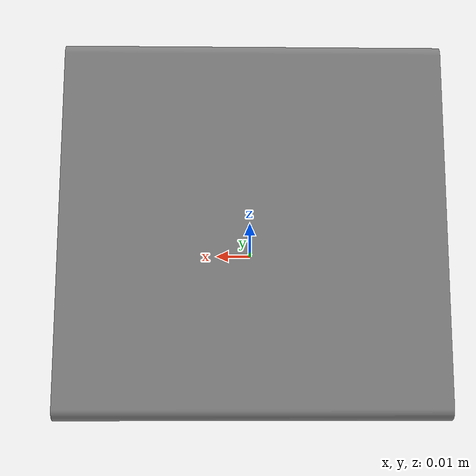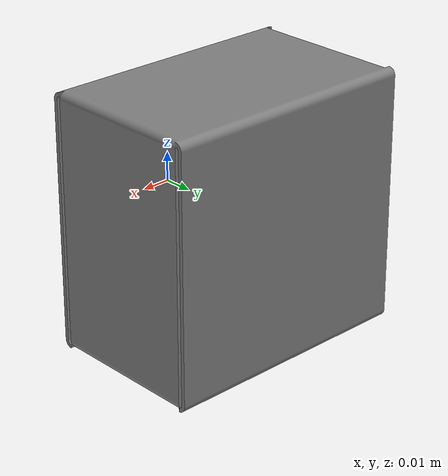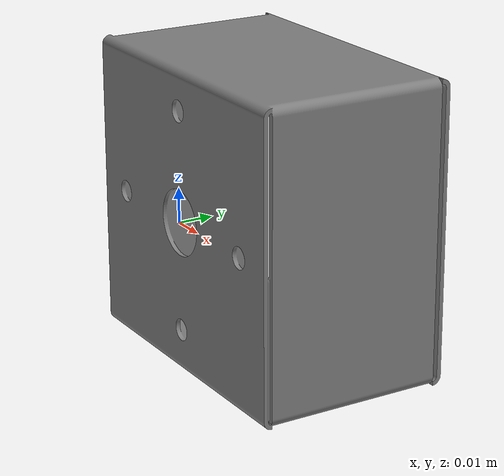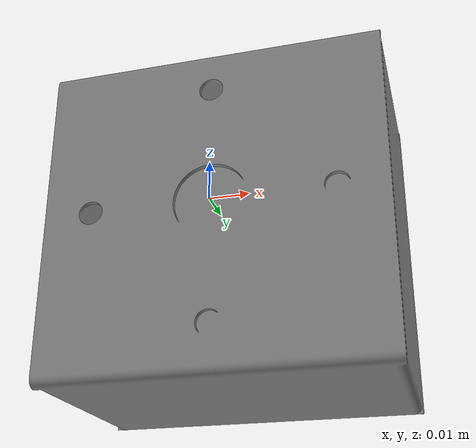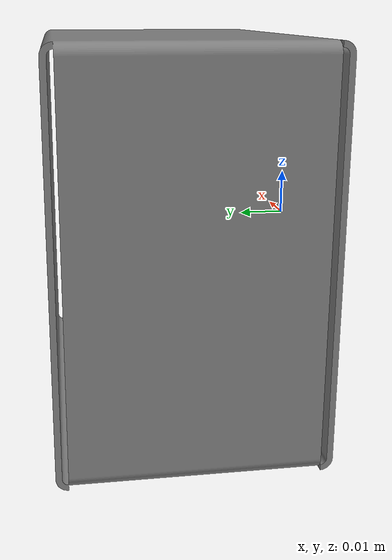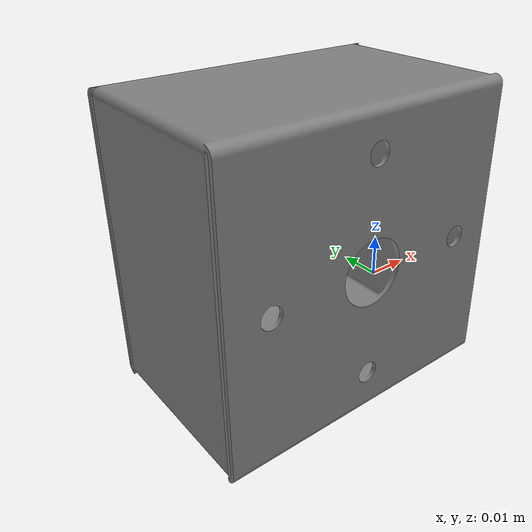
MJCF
<mujoco model="cover">
  <default>
    <default class="visual">
      <geom group="2" type="mesh" contype="0" conaffinity="0"/>
    </default>
    <default class="collision">
      <geom group="3" type="mesh"/>
    </default>
  </default>
  <asset>
    <mesh file="cover.obj"/>
  </asset>
  <worldbody>
    <body name="cover">
      <geom mesh="cover" class="visual"/>
      <geom mesh="cover" class="collision"/>
    </body>
  </worldbody>
</mujoco>
